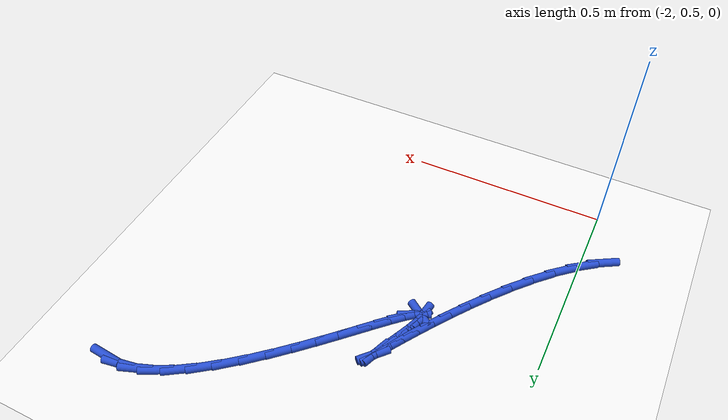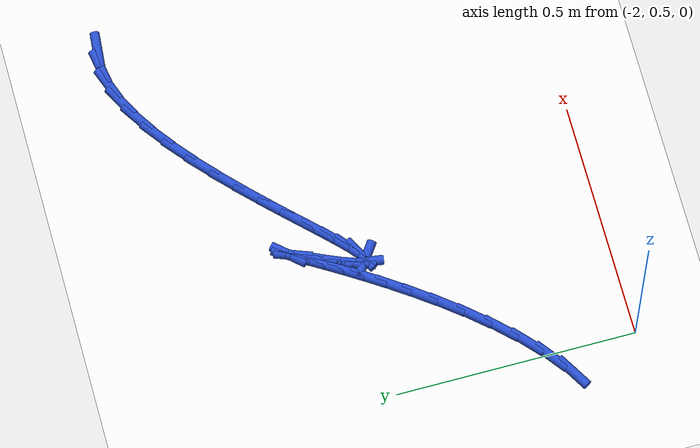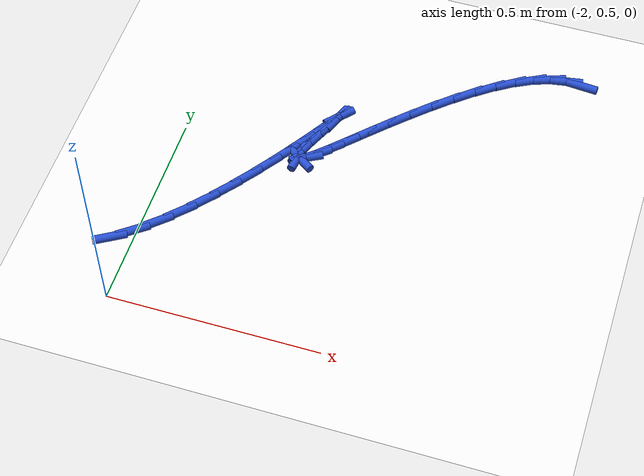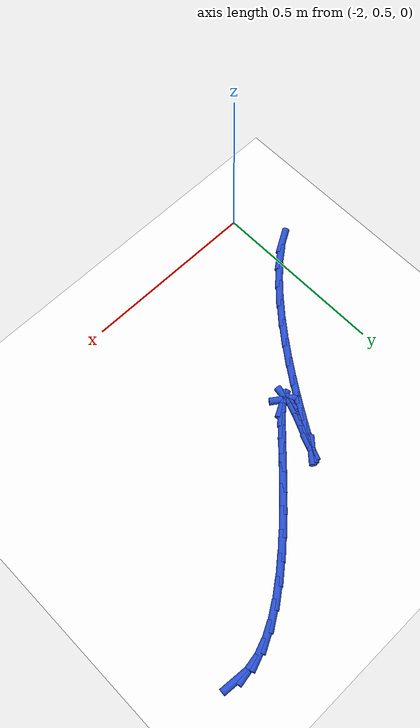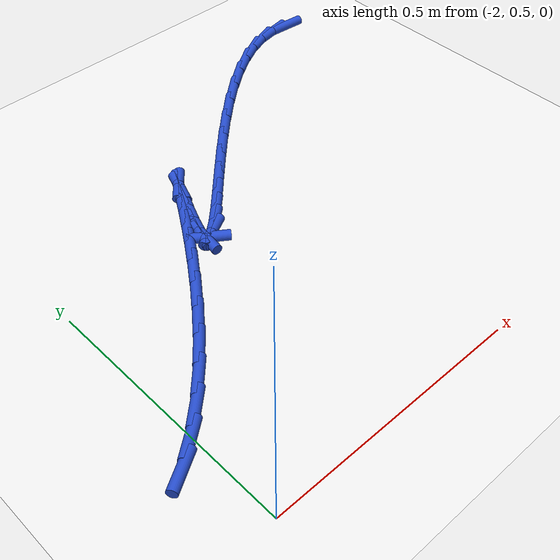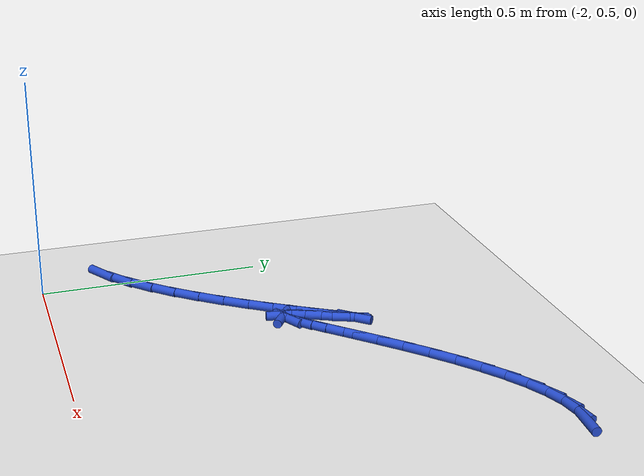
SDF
<sdf version="1.6">
 <world name="default">
  <model name="ground_plane">
   <static>1</static>
   <link name="link">
    <collision name="collision">
     <geometry><plane><normal>0 0 1</normal><size>100 100</size></plane></geometry>
     <surface><friction><ode><mu>100</mu><mu2>50</mu2></ode></friction></surface>
    </collision>
    <visual name="visual">
     <cast_shadows>0</cast_shadows>
     <geometry><plane><normal>0 0 1</normal><size>100 100</size></plane></geometry>
     <material>
      <script><uri>file://media/materials/scripts/gazebo.material</uri><name>Gazebo/WhiteGlow</name></script>
     </material>
    </visual>
   </link>
  </model>
  <model name="line">
   <link name="link_54">
    <pose>-1.1245431024443944 1.3992025381461979 0.01 0 1.57 -0.0858396317318175</pose>
    <collision name="collision">
     <geometry><cylinder><radius>0.01</radius><length>0.08</length></cylinder></geometry>
    </collision>
    <visual name="visual">
     <material>
      <script><name>Gazebo/Blue</name><uri>file://media/materials/scripts/gazebo.material</uri></script>
     </material>
     <geometry><cylinder><radius>0.01</radius><length>0.08</length></cylinder></geometry>
    </visual>
   </link>
   <link name="link_55">
    <pose>-1.162400563305171 1.4024602139100877 0.01 0 1.57 0.16693792970148782</pose>
    <collision name="collision">
     <geometry><cylinder><radius>0.01</radius><length>0.08</length></cylinder></geometry>
    </collision>
    <visual name="visual">
     <material>
      <script><name>Gazebo/Blue</name><uri>file://media/materials/scripts/gazebo.material</uri></script>
     </material>
     <geometry><cylinder><radius>0.01</radius><length>0.08</length></cylinder></geometry>
    </visual>
   </link>
   <link name="link_56">
    <pose>-1.203036604209944 1.3956127902556665 0.01 0 1.57 0.35394991808956044</pose>
    <collision name="collision">
     <geometry><cylinder><radius>0.01</radius><length>0.08</length></cylinder></geometry>
    </collision>
    <visual name="visual">
     <material>
      <script><name>Gazebo/Blue</name><uri>file://media/materials/scripts/gazebo.material</uri></script>
     </material>
     <geometry><cylinder><radius>0.01</radius><length>0.08</length></cylinder></geometry>
    </visual>
   </link>
   <link name="link_57">
    <pose>-1.2458855593814564 1.3797796210018072 0.01 0 1.57 0.4855371796997167</pose>
    <collision name="collision">
     <geometry><cylinder><radius>0.01</radius><length>0.08</length></cylinder></geometry>
    </collision>
    <visual name="visual">
     <material>
      <script><name>Gazebo/Blue</name><uri>file://media/materials/scripts/gazebo.material</uri></script>
     </material>
     <geometry><cylinder><radius>0.01</radius><length>0.08</length></cylinder></geometry>
    </visual>
   </link>
   <link name="link_58">
    <pose>-1.2902954458621239 1.356345891001485 0.01 0 1.57 0.5793456564147746</pose>
    <collision name="collision">
     <geometry><cylinder><radius>0.01</radius><length>0.08</length></cylinder></geometry>
    </collision>
    <visual name="visual">
     <material>
      <script><name>Gazebo/Blue</name><uri>file://media/materials/scripts/gazebo.material</uri></script>
     </material>
     <geometry><cylinder><radius>0.01</radius><length>0.08</length></cylinder></geometry>
    </visual>
   </link>
   <link name="link_59">
    <pose>-1.3356142806943627 1.3266967851076743 0.01 0 1.57 0.6476649487768694</pose>
    <collision name="collision">
     <geometry><cylinder><radius>0.01</radius><length>0.08</length></cylinder></geometry>
    </collision>
    <visual name="visual">
     <material>
      <script><name>Gazebo/Blue</name><uri>file://media/materials/scripts/gazebo.material</uri></script>
     </material>
     <geometry><cylinder><radius>0.01</radius><length>0.08</length></cylinder></geometry>
    </visual>
   </link>
   <link name="link_60">
    <pose>-1.3811900809205886 1.2922174881733506 0.01 0 1.57 0.6983021492797159</pose>
    <collision name="collision">
     <geometry><cylinder><radius>0.01</radius><length>0.08</length></cylinder></geometry>
    </collision>
    <visual name="visual">
     <material>
      <script><name>Gazebo/Blue</name><uri>file://media/materials/scripts/gazebo.material</uri></script>
     </material>
     <geometry><cylinder><radius>0.01</radius><length>0.08</length></cylinder></geometry>
    </visual>
   </link>
   <link name="link_61">
    <pose>-1.426370863583217 1.2542931850514876 0.01 0 1.57 0.7361066799409663</pose>
    <collision name="collision">
     <geometry><cylinder><radius>0.01</radius><length>0.08</length></cylinder></geometry>
    </collision>
    <visual name="visual">
     <material>
      <script><name>Gazebo/Blue</name><uri>file://media/materials/scripts/gazebo.material</uri></script>
     </material>
     <geometry><cylinder><radius>0.01</radius><length>0.08</length></cylinder></geometry>
    </visual>
   </link>
   <link name="link_62">
    <pose>-1.470504645724664 1.2143090605950613 0.01 0 1.57 0.7640274657303006</pose>
    <collision name="collision">
     <geometry><cylinder><radius>0.01</radius><length>0.08</length></cylinder></geometry>
    </collision>
    <visual name="visual">
     <material>
      <script><name>Gazebo/Blue</name><uri>file://media/materials/scripts/gazebo.material</uri></script>
     </material>
     <geometry><cylinder><radius>0.01</radius><length>0.08</length></cylinder></geometry>
    </visual>
   </link>
   <link name="link_63">
    <pose>-1.5129394443873463 1.1736502996570457 0.01 0 1.57 0.7837035980487882</pose>
    <collision name="collision">
     <geometry><cylinder><radius>0.01</radius><length>0.08</length></cylinder></geometry>
    </collision>
    <visual name="visual">
     <material>
      <script><name>Gazebo/Blue</name><uri>file://media/materials/scripts/gazebo.material</uri></script>
     </material>
     <geometry><cylinder><radius>0.01</radius><length>0.08</length></cylinder></geometry>
    </visual>
   </link>
   <link name="link_64">
    <pose>-1.553023276613678 1.1337020870904155 0.01 0 1.57 0.7956949019707528</pose>
    <collision name="collision">
     <geometry><cylinder><radius>0.01</radius><length>0.08</length></cylinder></geometry>
    </collision>
    <visual name="visual">
     <material>
      <script><name>Gazebo/Blue</name><uri>file://media/materials/scripts/gazebo.material</uri></script>
     </material>
     <geometry><cylinder><radius>0.01</radius><length>0.08</length></cylinder></geometry>
    </visual>
   </link>
   <link name="link_65">
    <pose>-1.5901041594460763 1.0958496077481459 0.01 0 1.57 0.7993448326599367</pose>
    <collision name="collision">
     <geometry><cylinder><radius>0.01</radius><length>0.08</length></cylinder></geometry>
    </collision>
    <visual name="visual">
     <material>
      <script><name>Gazebo/Blue</name><uri>file://media/materials/scripts/gazebo.material</uri></script>
     </material>
     <geometry><cylinder><radius>0.01</radius><length>0.08</length></cylinder></geometry>
    </visual>
   </link>
   <link name="link_66">
    <pose>-1.6235301099269572 1.0614780464832114 0.01 0 1.57 0.7919895647633824</pose>
    <collision name="collision">
     <geometry><cylinder><radius>0.01</radius><length>0.08</length></cylinder></geometry>
    </collision>
    <visual name="visual">
     <material>
      <script><name>Gazebo/Blue</name><uri>file://media/materials/scripts/gazebo.material</uri></script>
     </material>
     <geometry><cylinder><radius>0.01</radius><length>0.08</length></cylinder></geometry>
    </visual>
   </link>
   <link name="link_67">
    <pose>-1.6526491450987362 1.031972588148587 0.01 0 1.57 0.7662930415040041</pose>
    <collision name="collision">
     <geometry><cylinder><radius>0.01</radius><length>0.08</length></cylinder></geometry>
    </collision>
    <visual name="visual">
     <material>
      <script><name>Gazebo/Blue</name><uri>file://media/materials/scripts/gazebo.material</uri></script>
     </material>
     <geometry><cylinder><radius>0.01</radius><length>0.08</length></cylinder></geometry>
    </visual>
   </link>
   <link name="link_68">
    <pose>-1.6768092820038292 1.0087184175972472 0.01 0 1.57 0.6998068181346495</pose>
    <collision name="collision">
     <geometry><cylinder><radius>0.01</radius><length>0.08</length></cylinder></geometry>
    </collision>
    <visual name="visual">
     <material>
      <script><name>Gazebo/Blue</name><uri>file://media/materials/scripts/gazebo.material</uri></script>
     </material>
     <geometry><cylinder><radius>0.01</radius><length>0.08</length></cylinder></geometry>
    </visual>
   </link>
   <link name="link_69">
    <pose>-1.6953585376846514 0.9931007196821666 0.01 0 1.57 0.49269697560730286</pose>
    <collision name="collision">
     <geometry><cylinder><radius>0.01</radius><length>0.08</length></cylinder></geometry>
    </collision>
    <visual name="visual">
     <material>
      <script><name>Gazebo/Blue</name><uri>file://media/materials/scripts/gazebo.material</uri></script>
     </material>
     <geometry><cylinder><radius>0.01</radius><length>0.08</length></cylinder></geometry>
    </visual>
   </link>
   <link name="link_70">
    <pose>-1.7076449291836198 0.9865046792563205 0.01 0 1.57 -0.6170351477215499</pose>
    <collision name="collision">
     <geometry><cylinder><radius>0.01</radius><length>0.08</length></cylinder></geometry>
    </collision>
    <visual name="visual">
     <material>
      <script><name>Gazebo/Blue</name><uri>file://media/materials/scripts/gazebo.material</uri></script>
     </material>
     <geometry><cylinder><radius>0.01</radius><length>0.08</length></cylinder></geometry>
    </visual>
   </link>
   <link name="link_71">
    <pose>-1.7130164735431497 0.9903154811726835 0.01 0 1.57 1.4310159387744144</pose>
    <collision name="collision">
     <geometry><cylinder><radius>0.01</radius><length>0.08</length></cylinder></geometry>
    </collision>
    <visual name="visual">
     <material>
      <script><name>Gazebo/Blue</name><uri>file://media/materials/scripts/gazebo.material</uri></script>
     </material>
     <geometry><cylinder><radius>0.01</radius><length>0.08</length></cylinder></geometry>
    </visual>
   </link>
   <link name="link_72">
    <pose>-1.7108211878056565 1.0059183102842302 0.01 0 1.57 1.2247098024166136</pose>
    <collision name="collision">
     <geometry><cylinder><radius>0.01</radius><length>0.08</length></cylinder></geometry>
    </collision>
    <visual name="visual">
     <material>
      <script><name>Gazebo/Blue</name><uri>file://media/materials/scripts/gazebo.material</uri></script>
     </material>
     <geometry><cylinder><radius>0.01</radius><length>0.08</length></cylinder></geometry>
    </visual>
   </link>
   <link name="link_73">
    <pose>-1.700518190233851 1.034490138680337 0.01 0 1.57 1.1655637904282132</pose>
    <collision name="collision">
     <geometry><cylinder><radius>0.01</radius><length>0.08</length></cylinder></geometry>
    </collision>
    <visual name="visual">
     <material>
      <script><name>Gazebo/Blue</name><uri>file://media/materials/scripts/gazebo.material</uri></script>
     </material>
     <geometry><cylinder><radius>0.01</radius><length>0.08</length></cylinder></geometry>
    </visual>
   </link>
   <link name="link_74">
    <pose>-1.684763125091963 1.071217387573205 0.01 0 1.57 1.149024315685371</pose>
    <collision name="collision">
     <geometry><cylinder><radius>0.01</radius><length>0.08</length></cylinder></geometry>
    </collision>
    <visual name="visual">
     <material>
      <script><name>Gazebo/Blue</name><uri>file://media/materials/scripts/gazebo.material</uri></script>
     </material>
     <geometry><cylinder><radius>0.01</radius><length>0.08</length></cylinder></geometry>
    </visual>
   </link>
   <link name="link_75">
    <pose>-1.669809793137913 1.1045433164612342 0.01 0 1.57 1.1559700363063237</pose>
    <collision name="collision">
     <geometry><cylinder><radius>0.01</radius><length>0.08</length></cylinder></geometry>
    </collision>
    <visual name="visual">
     <material>
      <script><name>Gazebo/Blue</name><uri>file://media/materials/scripts/gazebo.material</uri></script>
     </material>
     <geometry><cylinder><radius>0.01</radius><length>0.08</length></cylinder></geometry>
    </visual>
   </link>
   <link name="link_76">
    <pose>-1.6605810753970143 1.1254995141115947 0.01 0 1.57 1.2170434990509773</pose>
    <collision name="collision">
     <geometry><cylinder><radius>0.01</radius><length>0.08</length></cylinder></geometry>
    </collision>
    <visual name="visual">
     <material>
      <script><name>Gazebo/Blue</name><uri>file://media/materials/scripts/gazebo.material</uri></script>
     </material>
     <geometry><cylinder><radius>0.01</radius><length>0.08</length></cylinder></geometry>
    </visual>
   </link>
   <link name="link_77">
    <pose>-1.6575183772066797 1.133793053617388 0.01 0 1.57 0.8456377064191734</pose>
    <collision name="collision">
     <geometry><cylinder><radius>0.01</radius><length>0.08</length></cylinder></geometry>
    </collision>
    <visual name="visual">
     <material>
      <script><name>Gazebo/Blue</name><uri>file://media/materials/scripts/gazebo.material</uri></script>
     </material>
     <geometry><cylinder><radius>0.01</radius><length>0.08</length></cylinder></geometry>
    </visual>
   </link>
   <link name="link_78">
    <pose>-1.660242914693488 1.1307187749454997 0.01 0 1.57 1.016807210903586</pose>
    <collision name="collision">
     <geometry><cylinder><radius>0.01</radius><length>0.08</length></cylinder></geometry>
    </collision>
    <visual name="visual">
     <material>
      <script><name>Gazebo/Blue</name><uri>file://media/materials/scripts/gazebo.material</uri></script>
     </material>
     <geometry><cylinder><radius>0.01</radius><length>0.08</length></cylinder></geometry>
    </visual>
   </link>
   <link name="link_79">
    <pose>-1.6683759039840154 1.1175715180628147 0.01 0 1.57 1.0301280203231842</pose>
    <collision name="collision">
     <geometry><cylinder><radius>0.01</radius><length>0.08</length></cylinder></geometry>
    </collision>
    <visual name="visual">
     <material>
      <script><name>Gazebo/Blue</name><uri>file://media/materials/scripts/gazebo.material</uri></script>
     </material>
     <geometry><cylinder><radius>0.01</radius><length>0.08</length></cylinder></geometry>
    </visual>
   </link>
   <link name="link_80">
    <pose>-1.6815385612048401 1.095646122936218 0.01 0 1.57 1.0261788812902055</pose>
    <collision name="collision">
     <geometry><cylinder><radius>0.01</radius><length>0.08</length></cylinder></geometry>
    </collision>
    <visual name="visual">
     <material>
      <script><name>Gazebo/Blue</name><uri>file://media/materials/scripts/gazebo.material</uri></script>
     </material>
     <geometry><cylinder><radius>0.01</radius><length>0.08</length></cylinder></geometry>
    </visual>
   </link>
   <link name="link_81">
    <pose>-1.6993521024825395 1.0662374295325956 0.01 0 1.57 1.0154880143447023</pose>
    <collision name="collision">
     <geometry><cylinder><radius>0.01</radius><length>0.08</length></cylinder></geometry>
    </collision>
    <visual name="visual">
     <material>
      <script><name>Gazebo/Blue</name><uri>file://media/materials/scripts/gazebo.material</uri></script>
     </material>
     <geometry><cylinder><radius>0.01</radius><length>0.08</length></cylinder></geometry>
    </visual>
   </link>
   <link name="link_82">
    <pose>-1.721437743943691 1.0306402778188317 0.01 0 1.57 1.000347491968734</pose>
    <collision name="collision">
     <geometry><cylinder><radius>0.01</radius><length>0.08</length></cylinder></geometry>
    </collision>
    <visual name="visual">
     <material>
      <script><name>Gazebo/Blue</name><uri>file://media/materials/scripts/gazebo.material</uri></script>
     </material>
     <geometry><cylinder><radius>0.01</radius><length>0.08</length></cylinder></geometry>
    </visual>
   </link>
   <link name="link_83">
    <pose>-1.747416701714873 0.990149507761812 0.01 0 1.57 0.9812179604115071</pose>
    <collision name="collision">
     <geometry><cylinder><radius>0.01</radius><length>0.08</length></cylinder></geometry>
    </collision>
    <visual name="visual">
     <material>
      <script><name>Gazebo/Blue</name><uri>file://media/materials/scripts/gazebo.material</uri></script>
     </material>
     <geometry><cylinder><radius>0.01</radius><length>0.08</length></cylinder></geometry>
    </visual>
   </link>
   <link name="link_84">
    <pose>-1.7769101919226615 0.9460599593284215 0.01 0 1.57 0.957848941857968</pose>
    <collision name="collision">
     <geometry><cylinder><radius>0.01</radius><length>0.08</length></cylinder></geometry>
    </collision>
    <visual name="visual">
     <material>
      <script><name>Gazebo/Blue</name><uri>file://media/materials/scripts/gazebo.material</uri></script>
     </material>
     <geometry><cylinder><radius>0.01</radius><length>0.08</length></cylinder></geometry>
    </visual>
   </link>
   <link name="link_85">
    <pose>-1.809539430693635 0.8996664724855445 0.01 0 1.57 0.9295366327947402</pose>
    <collision name="collision">
     <geometry><cylinder><radius>0.01</radius><length>0.08</length></cylinder></geometry>
    </collision>
    <visual name="visual">
     <material>
      <script><name>Gazebo/Blue</name><uri>file://media/materials/scripts/gazebo.material</uri></script>
     </material>
     <geometry><cylinder><radius>0.01</radius><length>0.08</length></cylinder></geometry>
    </visual>
   </link>
   <link name="link_86">
    <pose>-1.8449256341543707 0.8522638872000675 0.01 0 1.57 0.8951383955606982</pose>
    <collision name="collision">
     <geometry><cylinder><radius>0.01</radius><length>0.08</length></cylinder></geometry>
    </collision>
    <visual name="visual">
     <material>
      <script><name>Gazebo/Blue</name><uri>file://media/materials/scripts/gazebo.material</uri></script>
     </material>
     <geometry><cylinder><radius>0.01</radius><length>0.08</length></cylinder></geometry>
    </visual>
   </link>
   <link name="link_87">
    <pose>-1.8826900184314463 0.8051470434388744 0.01 0 1.57 0.852967804444267</pose>
    <collision name="collision">
     <geometry><cylinder><radius>0.01</radius><length>0.08</length></cylinder></geometry>
    </collision>
    <visual name="visual">
     <material>
      <script><name>Gazebo/Blue</name><uri>file://media/materials/scripts/gazebo.material</uri></script>
     </material>
     <geometry><cylinder><radius>0.01</radius><length>0.08</length></cylinder></geometry>
    </visual>
   </link>
   <link name="link_88">
    <pose>-1.9224537996514386 0.7596107811688514 0.01 0 1.57 0.8005846090213203</pose>
    <collision name="collision">
     <geometry><cylinder><radius>0.01</radius><length>0.08</length></cylinder></geometry>
    </collision>
    <visual name="visual">
     <material>
      <script><name>Gazebo/Blue</name><uri>file://media/materials/scripts/gazebo.material</uri></script>
     </material>
     <geometry><cylinder><radius>0.01</radius><length>0.08</length></cylinder></geometry>
    </visual>
   </link>
   <link name="link_89">
    <pose>-1.9638381939409262 0.7169499403568828 0.01 0 1.57 0.7344584542077192</pose>
    <collision name="collision">
     <geometry><cylinder><radius>0.01</radius><length>0.08</length></cylinder></geometry>
    </collision>
    <visual name="visual">
     <material>
      <script><name>Gazebo/Blue</name><uri>file://media/materials/scripts/gazebo.material</uri></script>
     </material>
     <geometry><cylinder><radius>0.01</radius><length>0.08</length></cylinder></geometry>
    </visual>
   </link>
   <link name="link_90">
    <pose>-2.0064644174264856 0.6784593609698544 0.01 0 1.57 0.6494860373463434</pose>
    <collision name="collision">
     <geometry><cylinder><radius>0.01</radius><length>0.08</length></cylinder></geometry>
    </collision>
    <visual name="visual">
     <material>
      <script><name>Gazebo/Blue</name><uri>file://media/materials/scripts/gazebo.material</uri></script>
     </material>
     <geometry><cylinder><radius>0.01</radius><length>0.08</length></cylinder></geometry>
    </visual>
   </link>
   <link name="link_91">
    <pose>-2.049953686234695 0.6454338829746504 0.01 0 1.57 0.5384343052272151</pose>
    <collision name="collision">
     <geometry><cylinder><radius>0.01</radius><length>0.08</length></cylinder></geometry>
    </collision>
    <visual name="visual">
     <material>
      <script><name>Gazebo/Blue</name><uri>file://media/materials/scripts/gazebo.material</uri></script>
     </material>
     <geometry><cylinder><radius>0.01</radius><length>0.08</length></cylinder></geometry>
    </visual>
   </link>
  </model>
 </world>
</sdf>
